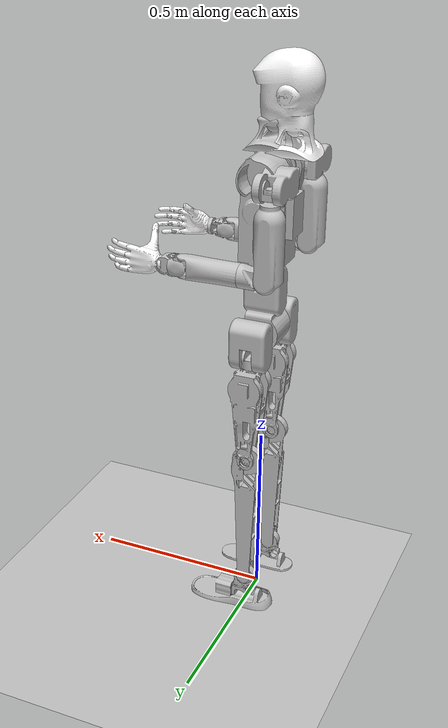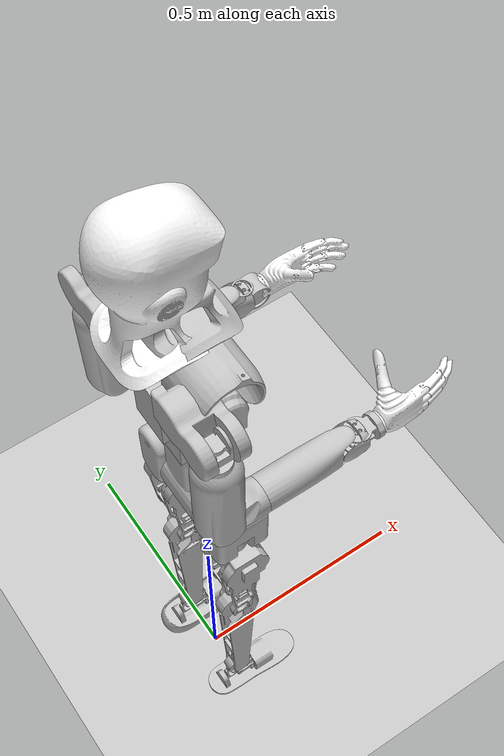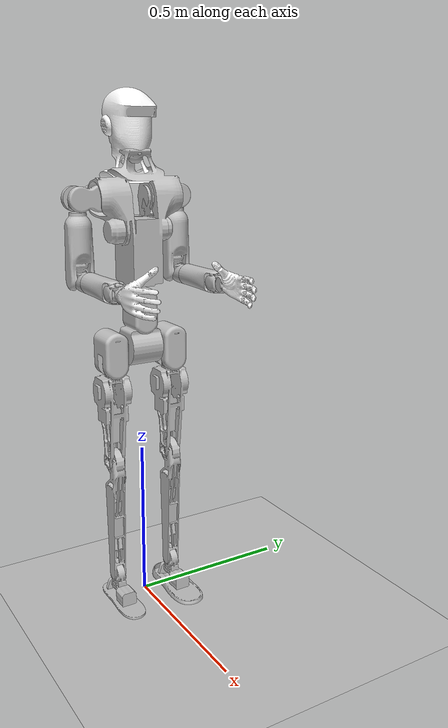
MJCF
<mujoco model="Moya01">
  <compiler angle="radian" meshdir="./meshes/" />
  <default>
    <joint damping="0.1" armature="0.01" frictionloss="0.1" />
    <geom rgba="0.75294 0.75294 0.75294 1" type="mesh" />
    <default class="collision">
      <geom type="capsule" priority="1" condim="3" group="3" contype="1" conaffinity="0" />
    </default>
  </default>
  <asset>
    <texture type="skybox" builtin="gradient" rgb1="0 0 1" rgb2="1 1 1" width="800" height="800"/>
    <texture type="2d" name="groundplane" builtin="checker" mark="edge"
         rgb1="0.8 0.8 1" rgb2="1 1 1" markrgb="0 0 0"
         width="300" height="300"/>
    <material name="groundplane"
          texture="groundplane"
          texuniform="true"
          texrepeat="5 5"
          reflectance="0"/>
    <mesh name="pelvis_v1_1" file="pelvis_v1_1.STL" />
    <mesh name="left_hip_pitch_link_v1_1" file="left_hip_pitch_link_v1_1.STL" />
    <mesh name="left_hip_roll_link_v1_1" file="left_hip_roll_link_v1_1.STL" />
    <mesh name="left_hip_yaw_link_v1_1" file="left_hip_yaw_link_v1_1.STL" />
    <mesh name="left_knee_link_v1_1" file="left_knee_link_v1_1.STL" />
    <mesh name="left_ankle_pitch_link_v1_1" file="left_ankle_pitch_link_v1_1.STL" />
    <mesh name="left_ankle_roll_link_v2" file="left_ankle_roll_link_v2.STL" />
    <mesh name="right_hip_pitch_link_v1_1" file="right_hip_pitch_link_v1_1.STL" />
    <mesh name="right_hip_roll_link_v1_1" file="right_hip_roll_link_v1_1.STL" />
    <mesh name="right_hip_yaw_link_v1_1" file="right_hip_yaw_link_v1_1.STL" />
    <mesh name="right_knee_link_v1_1" file="right_knee_link_v1_1.STL" />
    <mesh name="right_ankle_pitch_link_v1_1" file="right_ankle_pitch_link_v1_1.STL" />
    <mesh name="right_ankle_roll_link_v2" file="right_ankle_roll_link_v2.STL" />
    <mesh name="waist_roll_link_v1_1" file="waist_roll_link_v1_1.STL" />
    <mesh name="torso_link_v1_1" file="torso_link_v1_1.STL" />
    <mesh name="left_shoulder_pitch_link_v1_1" file="left_shoulder_pitch_link_v1_1.STL" />
    <mesh name="left_shoulder_roll_link_v1_1" file="left_shoulder_roll_link_v1_1.STL" />
    <mesh name="left_shoulder_yaw_link_v1_1" file="left_shoulder_yaw_link_v1_1.STL" />
    <mesh name="left_elbow_link_v1_1" file="left_elbow_link_v1_1.STL" />
    <mesh name="left_wrist_roll_link_v1_1" file="left_wrist_roll_link_v1_1.STL" />
    <mesh name="left_wrist_pitch_link_v1_1" file="left_wrist_pitch_link_v1_1.STL" />
    <mesh name="left_wrist_yaw_link_v1_1" file="left_wrist_yaw_link_v1_1.STL" />
    <mesh name="left_hand_link" file="left_hand_link.STL" />
    <mesh name="right_shoulder_pitch_link_v1_1" file="right_shoulder_pitch_link_v1_1.STL" />
    <mesh name="right_shoulder_roll_link_v1_1" file="right_shoulder_roll_link_v1_1.STL" />
    <mesh name="right_shoulder_yaw_link_v1_1" file="right_shoulder_yaw_link_v1_1.STL" />
    <mesh name="right_elbow_link_v1_1" file="right_elbow_link_v1_1.STL" />
    <mesh name="right_wrist_roll_link_v1_1" file="right_wrist_roll_link_v1_1.STL" />
    <mesh name="right_wrist_pitch_link_v1_1" file="right_wrist_pitch_link_v1_1.STL" />
    <mesh name="right_wrist_yaw_link_v1_1" file="right_wrist_yaw_link_v1_1.STL" />
    <mesh name="right_hand_link" file="right_hand_link.STL" />
    <mesh name="Technology head_link" file="Technology head_link.STL" />
  </asset>
  <worldbody>
    <geom name="floor" size="0 0 0.01" type="plane" material="groundplane" contype="1" conaffinity="1" priority="1" friction="0.6" condim="3"/>
    <light diffuse=".5 .5 .5" pos="-3 -3 5" dir="3 3 -5" castshadow="true"/>

    <body name="pelvis" pos="0 0 0.792">
      <inertial pos="0 0 -0.047022" mass="0.9" diaginertia="0.0007894 0.0007894 0.00061446" />
      <joint name="pelvis" type="free" limited="false" actuatorfrclimited="false" />
      <geom contype="0" conaffinity="0" group="1" density="0" mesh="pelvis_v1_1" />
      <geom name="pelvis_collision" class="collision" type="sphere" size="0.05" pos="0 0 0.13" group="3" contype="1" conaffinity="0" rgba="0.1 0.5 0.9 0.5" />
      <site name="imu" size="0.01" pos="0.0 0.0 0.0" />
      <body name="left_hip_pitch_link" pos="0.00085 0.0495 0.044">
        <inertial pos="7.418e-05 0.045198 0.00129601" quat="0.707097 0.0101902 -0.00892502 0.706986" mass="1.377" diaginertia="0.00216441 0.00197203 0.00145089" />
        <joint name="left_hip_pitch_joint" pos="0 0 0" axis="0 1 0" range="-1.8125 1.8125" actuatorfrcrange="-75 75" />
        <geom contype="0" conaffinity="0" group="1" density="0" mesh="left_hip_pitch_link_v1_1" />
        <body name="left_hip_roll_link" pos="0 0.048 -0.0465">
          <inertial pos="0.00018406 0 -0.00751673" quat="0.484297 0.515225 0.515225 0.484297" mass="0.251" diaginertia="0.00011012 0.000103696 8.37638e-05" />
          <joint name="left_hip_roll_joint" pos="0 0 0" axis="1 0 0" range="-0.5236 1.5708" actuatorfrcrange="-87 87" />
          <geom contype="0" conaffinity="0" group="1" density="0" mesh="left_hip_roll_link_v1_1" />
          <body name="left_hip_yaw_link">
            <inertial pos="0.00038051 -4.13e-06 -0.128235" quat="0.999995 -0.000178086 0.00302942 0.000415837" mass="1.635" diaginertia="0.0117314 0.0112122 0.00146161" />
            <joint name="left_hip_yaw_joint" pos="0 0 0" axis="0 0 1" range="-1.8326 1.8326" actuatorfrcrange="-87 87" />
            <geom contype="0" conaffinity="0" group="1" density="0" mesh="left_hip_yaw_link_v1_1" />
            <body name="left_knee_link" pos="0 0 -0.3135">
              <inertial pos="0.00319002 -0.00023718 -0.138749" quat="0.707473 -0.00769863 -0.00633289 0.70667" mass="0.691" diaginertia="0.0124053 0.012275 0.00035067" />
              <joint name="left_knee_joint" pos="0 0 0" axis="0 1 0" range="-0.017453 2.3562" actuatorfrcrange="-120 120" />
              <geom contype="0" conaffinity="0" group="1" density="0" mesh="left_knee_link_v1_1" />
              <body name="left_ankle_pitch_link" pos="0 0 -0.39">
                <inertial pos="0.00447498 1.684e-05 -0.023869" quat="0.70119 0.0868611 0.0858643 0.702435" mass="0.203" diaginertia="0.00020892 0.000157098 8.19316e-05" />
                <joint name="left_ankle_pitch_joint" pos="0 0 0" axis="0 1 0" range="-1.2217 0.8727" actuatorfrcrange="-89 89" />
                <geom contype="0" conaffinity="0" group="1" density="0" mesh="left_ankle_pitch_link_v1_1" />
                <body name="left_ankle_roll_link" pos="0 0 -0.058">
                  <inertial pos="0.0476389 0.00019352 -0.00796802" quat="0 0.725956 0 0.687741" mass="0.504" diaginertia="0.000864388 0.00084428 0.000169422" />
                  <joint name="left_ankle_roll_joint" pos="0 0 0" axis="1 0 0" range="-0.5236 0.5236" actuatorfrcrange="-12 12" />
                  <geom contype="0" conaffinity="0" group="1" density="0" mesh="left_ankle_roll_link_v2" />
                  <geom name="l_foot_collision" type="box" size="0.115 0.039 0.005" pos="0.038 0 -0.0225" group="3" contype="1" conaffinity="0" rgba="0.1 0.5 0.9 0.5" condim="3" />
                  <site name="left_foot" rgba="1 0 0 1" pos="0.04 0 -0.00" />
                </body>
              </body>
            </body>
          </body>
        </body>
      </body>
      <body name="right_hip_pitch_link" pos="0.00085 -0.0495 0.044">
        <inertial pos="-7.418e-05 -0.045198 -0.00129601" quat="0.708088 -0.0102131 0.00890131 0.705994" mass="1.377" diaginertia="0.00216441 0.00197203 0.00145089" />
        <joint name="right_hip_pitch_joint" pos="0 0 0" axis="0 1 0" range="-1.8125 1.8125" actuatorfrcrange="-75 75" />
        <geom contype="0" conaffinity="0" group="1" density="0" mesh="right_hip_pitch_link_v1_1" />
        <body name="right_hip_roll_link" pos="0 -0.048 -0.0465">
          <inertial pos="-0.00018406 0 -0.00751673" quat="0.484297 0.515225 0.515225 0.484297" mass="0.251" diaginertia="0.00011012 0.000103696 8.37638e-05" />
          <joint name="right_hip_roll_joint" pos="0 0 0" axis="1 0 0" range="-1.5708 0.5236" actuatorfrcrange="-87 87" />
          <geom contype="0" conaffinity="0" group="1" density="0" mesh="right_hip_roll_link_v1_1" />
          <body name="right_hip_yaw_link">
            <inertial pos="0.00025557 -5.43e-06 -0.128235" quat="0.999997 -0.000188102 0.00245737 0.000412843" mass="1.635" diaginertia="0.0117313 0.0112122 0.00146166" />
            <joint name="right_hip_yaw_joint" pos="0 0 0" axis="0 0 1" range="-1.8326 1.8326" actuatorfrcrange="-87 87" />
            <geom contype="0" conaffinity="0" group="1" density="0" mesh="right_hip_yaw_link_v1_1" />
            <body name="right_knee_link" pos="0 0 -0.3135">
              <inertial pos="0.0029902 -0.00023718 -0.138749" quat="0.707473 -0.00769863 -0.00633289 0.70667" mass="0.691" diaginertia="0.0124053 0.012275 0.00035067" />
              <joint name="right_knee_joint" pos="0 0 0" axis="0 1 0" range="-0.017453 2.3562" actuatorfrcrange="-120 120" />
              <geom contype="0" conaffinity="0" group="1" density="0" mesh="right_knee_link_v1_1" />
              <body name="right_ankle_pitch_link" pos="0 0 -0.39">
                <inertial pos="0.00427498 1.684e-05 -0.023869" quat="0.70119 0.0868611 0.0858643 0.702435" mass="0.203" diaginertia="0.00020892 0.000157098 8.19316e-05" />
                <joint name="right_ankle_pitch_joint" pos="0 0 0" axis="0 1 0" range="-1.2217 0.8727" actuatorfrcrange="-89 89" />
                <geom contype="0" conaffinity="0" group="1" density="0" mesh="right_ankle_pitch_link_v1_1" />
                <body name="right_ankle_roll_link" pos="0 0 -0.058">
                  <inertial pos="0.0476389 0.00019352 -0.00796802" quat="0 0.725956 0 0.687741" mass="0.504" diaginertia="0.000864388 0.00084428 0.000169422" />
                  <joint name="right_ankle_roll_joint" pos="0 0 0" axis="1 0 0" range="-0.5236 0.5236" actuatorfrcrange="-12 12" />
                  <geom contype="0" conaffinity="0" group="1" density="0" mesh="right_ankle_roll_link_v2" />
                  <geom name="r_foot_collision" type="box" size="0.115 0.039 0.005" pos="0.038 0 -0.0225" group="3" contype="1" conaffinity="0" rgba="0.1 0.5 0.9 0.5" condim="3" />
                  <site name="right_foot" rgba="1 0 0 1" pos="0.04 0 -0.00" />
                </body>
              </body>
            </body>
          </body>
        </body>
      </body>
      <body name="waist_roll_link" pos="0.00085 0 0.19">
        <inertial pos="-0.00017849 0 0.00743447" quat="0.514981 0.484556 0.484556 0.514981" mass="0.259" diaginertia="0.00011059 0.000104495 8.4235e-05" />
        <joint name="waist_roll_joint" pos="0 0 0" axis="1 0 0" range="-0.5236 0.5236" actuatorfrcrange="-87 87" />
        <geom contype="0" conaffinity="0" group="1" density="0" mesh="waist_roll_link_v1_1" />
        <body name="torso_link">
          <inertial pos="-0.0224813 -0.00172502 0.276771" quat="0.713218 -0.0129164 -0.0121464 0.700718" mass="8.275" diaginertia="0.224453 0.22433 0.0273639" />
          <joint name="waist_yaw_joint" pos="0 0 0" axis="0 0 1" range="-1.5708 1.5708" actuatorfrcrange="-87 87" />
          <geom contype="0" conaffinity="0" group="1" density="0" mesh="torso_link_v1_1" />
          <geom pos="-0.062 0 0.348" quat="1 0 0 0" contype="0" conaffinity="0" group="1" density="0" rgba="1 1 1 1" mesh="Technology head_link" />
          <geom name="torso_collision" class="collision" size="0.08" fromto="0.00 0 0.12 -0.03 0 0.28" group="3" contype="1" conaffinity="0" rgba="0.1 0.5 0.9 0.5" />
          <body name="left_shoulder_pitch_link" pos="-0.065 0.05835 0.2885">
            <inertial pos="5.543e-05 0.0554533 5.429e-05" quat="0.500477 0.499362 -0.499832 0.500328" mass="1.277" diaginertia="0.00194002 0.00178135 0.00103975" />
            <joint name="left_shoulder_pitch_joint" pos="0 0 0" axis="0 1 0" range="-3.6652 1.5708" actuatorfrcrange="-48 48" />
            <geom contype="0" conaffinity="0" group="1" density="0" mesh="left_shoulder_pitch_link_v1_1" />
            <body name="left_shoulder_roll_link" pos="-5e-05 0.1012 0">
              <inertial pos="0 -0.00015563 -0.00797243" quat="0.449914 0.545507 0.449914 0.545507" mass="0.229" diaginertia="7.05648e-05 6.60152e-05 5.784e-05" />
              <joint name="left_shoulder_roll_joint" pos="0 0 0" axis="1 0 0" range="-0.2618 3.1416" actuatorfrcrange="-84 84" />
              <geom contype="0" conaffinity="0" group="1" density="0" mesh="left_shoulder_roll_link_v1_1" />
              <body name="left_shoulder_yaw_link">
                <inertial pos="-7.8318e-05 0.001011 -0.12915" mass="1.194" diaginertia="0.00412845 0.00411827 0.00084103" />
                <joint name="left_shoulder_yaw_joint" pos="0 0 0" axis="0 0 1" range="-2.1817 2.1817" actuatorfrcrange="-84 84" />
                <geom contype="0" conaffinity="0" group="1" density="0" mesh="left_shoulder_yaw_link_v1_1" />
                <body name="left_elbow_link" pos="0 0 -0.23">
                  <inertial pos="0.0167741 0 -0.00133301" quat="0 0.684589 0 0.728929" mass="0.185" diaginertia="0.000124726 0.00011358 7.98035e-05" />
                  <joint name="left_elbow_joint" pos="0 0 0" axis="0 1 0" range="-0.6981 1.5707" actuatorfrcrange="-37 37" />
                  <geom contype="0" conaffinity="0" group="1" density="0" mesh="left_elbow_link_v1_1" />
                  <body name="left_wrist_roll_link">
                    <inertial pos="0.0985386 -0.00025438 -0.00071846" quat="0.49661 0.497949 0.510134 0.495166" mass="1.372" diaginertia="0.00443163 0.00434654 0.000486748" />
                    <joint name="left_wrist_roll_joint" pos="0 0 0" axis="1 0 0" range="-2.0071 2.0071" actuatorfrcrange="-37 37" />
                    <geom contype="0" conaffinity="0" group="1" density="0" mesh="left_wrist_roll_link_v1_1" />
                    <body name="left_wrist_pitch_link" pos="0.235 0 0">
                      <inertial pos="0.0075268 0 0" quat="0.5 0.5 -0.5 0.5" mass="0.042" diaginertia="1.443e-05 1.052e-05 7.83e-06" />
                      <joint name="left_wrist_pitch_joint" pos="0 0 0" axis="0 1 0" range="-0.5236 0.5236" actuatorfrcrange="-20 20" />
                      <geom contype="0" conaffinity="0" group="1" density="0" mesh="left_wrist_pitch_link_v1_1" />
                      <body name="left_wrist_yaw_link" pos="0.021 0 0">
                        <inertial pos="0.086187 -0.00635348 0.00761055" quat="0.673531 0.336171 0.566101 0.335968" mass="0.53" diaginertia="0.00218929 0.00185367 0.000486625" />
                        <joint name="left_wrist_yaw_joint" pos="0 0 0" axis="0 0 1" range="-1.3963 1.3963" actuatorfrcrange="-25 25" />
                        <geom contype="0" conaffinity="0" group="1" density="0" mesh="left_wrist_yaw_link_v1_1" />
                        <geom pos="0.031 0 0" quat="1 0 0 0" contype="0" conaffinity="0" group="1" density="0" rgba="1 1 1 1" mesh="left_hand_link" />
                      </body>
                    </body>
                  </body>
                </body>
              </body>
            </body>
          </body>
          <body name="right_shoulder_pitch_link" pos="-0.065 -0.0583 0.2885">
            <inertial pos="0.00015543 -0.0554533 -5.429e-05" quat="0.500328 0.499832 -0.499362 0.500477" mass="1.277" diaginertia="0.00194002 0.00178135 0.00103975" />
            <joint name="right_shoulder_pitch_joint" pos="0 0 0" axis="0 1 0" range="-3.6652 1.5708" actuatorfrcrange="-48 48" />
            <geom contype="0" conaffinity="0" group="1" density="0" mesh="right_shoulder_pitch_link_v1_1" />
            <body name="right_shoulder_roll_link" pos="5e-05 -0.1012 0">
              <inertial pos="0 -0.00015563 -0.00797243" quat="0.449914 0.545507 0.449914 0.545507" mass="0.229" diaginertia="7.05648e-05 6.60152e-05 5.784e-05" />
              <joint name="right_shoulder_roll_joint" pos="0 0 0" axis="1 0 0" range="-3.1416 0.2618" actuatorfrcrange="-84 84" />
              <geom contype="0" conaffinity="0" group="1" density="0" mesh="right_shoulder_roll_link_v1_1" />
              <body name="right_shoulder_yaw_link">
                <inertial pos="-7.8318e-05 0.001011 -0.12915" mass="1.194" diaginertia="0.00412845 0.00411827 0.00084103" />
                <joint name="right_shoulder_yaw_joint" pos="0 0 0" axis="0 0 1" range="-2.1817 2.1817" actuatorfrcrange="-84 84" />
                <geom contype="0" conaffinity="0" group="1" density="0" mesh="right_shoulder_yaw_link_v1_1" />
                <body name="right_elbow_link" pos="0 0 -0.23">
                  <inertial pos="0.0167741 0 -0.00133301" quat="0 0.684589 0 0.728929" mass="0.185" diaginertia="0.000124726 0.00011358 7.98035e-05" />
                  <joint name="right_elbow_joint" pos="0 0 0" axis="0 1 0" range="-0.6981 1.5707" actuatorfrcrange="-37 37" />
                  <geom contype="0" conaffinity="0" group="1" density="0" mesh="right_elbow_link_v1_1" />
                  <body name="right_wrist_roll_link">
                    <inertial pos="0.0985386 -0.00025438 -0.00071846" quat="0.49661 0.497949 0.510134 0.495166" mass="1.372" diaginertia="0.00443163 0.00434654 0.000486748" />
                    <joint name="right_wrist_roll_joint" pos="0 0 0" axis="1 0 0" range="-2.0071 2.0071" actuatorfrcrange="-37 37" />
                    <geom contype="0" conaffinity="0" group="1" density="0" mesh="right_wrist_roll_link_v1_1" />
                    <body name="right_wrist_pitch_link" pos="0.235 0 0">
                      <inertial pos="0.0075268 0 0" quat="0.5 0.5 -0.5 0.5" mass="0.042" diaginertia="1.443e-05 1.052e-05 7.83e-06" />
                      <joint name="right_wrist_pitch_joint" pos="0 0 0" axis="0 1 0" range="-0.5236 0.5236" actuatorfrcrange="-20 20" />
                      <geom contype="0" conaffinity="0" group="1" density="0" mesh="right_wrist_pitch_link_v1_1" />
                      <body name="right_wrist_yaw_link" pos="0.021 0 0">
                        <inertial pos="0.0861973 0.00622963 0.00761411" quat="0.334902 0.565466 0.337436 0.673963" mass="0.53" diaginertia="0.00219004 0.00185458 0.00048651" />
                        <joint name="right_wrist_yaw_joint" pos="0 0 0" axis="0 0 1" range="-1.3963 1.3963" actuatorfrcrange="-25 25" />
                        <geom contype="0" conaffinity="0" group="1" density="0" mesh="right_wrist_yaw_link_v1_1" />
                        <geom pos="0.031 0 0" quat="1 0 0 0" contype="0" conaffinity="0" group="1" density="0" rgba="1 1 1 1" mesh="right_hand_link" />
                      </body>
                    </body>
                  </body>
                </body>
              </body>
            </body>
          </body>
        </body>
      </body>
    </body>
  </worldbody>
  <sensor>
    <framequat name="orientation" objtype="site" noise="0.001" objname="imu" />
    <gyro name="angular-velocity" site="imu" noise="0.005" />
  </sensor>
</mujoco>
